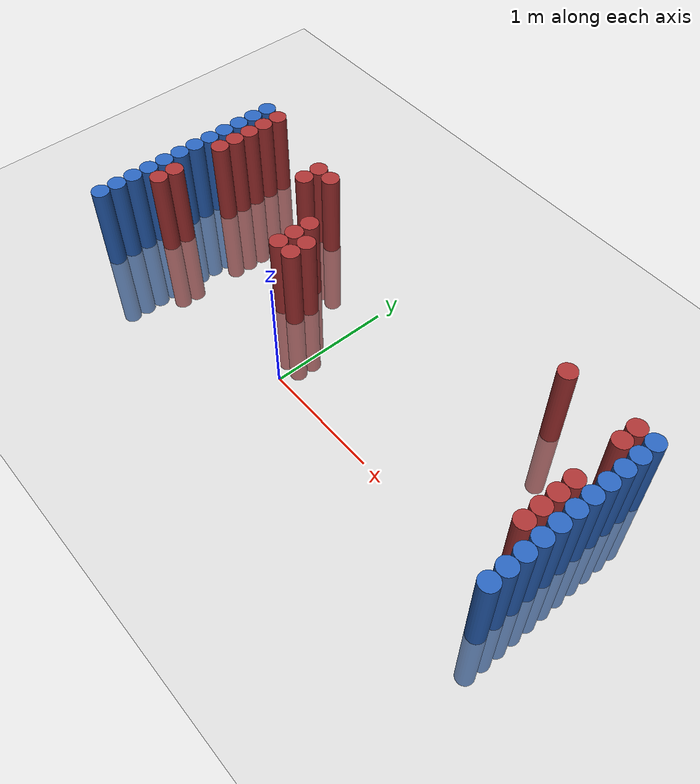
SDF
<sdf version="1.6">
 <world name="default">
  <model name="ground_plane">
   <static>1</static>
   <link name="link">
    <collision name="collision">
     <geometry><plane><normal>0 0 1</normal><size>100 100</size></plane></geometry>
     <surface><friction><ode><mu>100</mu><mu2>50</mu2></ode></friction></surface>
    </collision>
    <visual name="visual">
     <cast_shadows>0</cast_shadows>
     <geometry><plane><normal>0 0 1</normal><size>100 100</size></plane></geometry>
     <material>
      <script><uri>file://media/materials/scripts/gazebo.material</uri><name>Gazebo/Grey</name></script>
     </material>
    </visual>
   </link>
  </model>
  <model name="unit_cylinder_90">
   <static>1</static>
   <pose>2.425000 -0.275000 0.000000 0.000000 0.000000 0.000000</pose>
   <link name="link">
    <inertial>
     <mass>1</mass>
     <inertia><ixx>0.145833</ixx><ixy>0</ixy><ixz>0</ixz><iyy>0.145833</iyy><iyz>0</iyz><izz>0.125</izz></inertia>
    </inertial>
    <collision name="collision">
     <geometry><cylinder><radius>0.075000</radius><length>1.5</length></cylinder></geometry>
    </collision>
    <visual name="visual">
     <geometry><cylinder><radius>0.075000</radius><length>1.5</length></cylinder></geometry>
     <material>
      <ambient>0.152000 0.379000 0.720000 1</ambient>
      <diffuse>0.152000 0.379000 0.720000 1</diffuse>
     </material>
     <material>
      <script><name>Gazebo/Grey</name><uri>file://media/materials/scripts/gazebo.material</uri></script>
     </material>
    </visual>
   </link>
  </model>
  <model name="unit_cylinder_91">
   <static>1</static>
   <pose>-1.925000 -0.275000 0.000000 0.000000 0.000000 0.000000</pose>
   <link name="link">
    <inertial>
     <mass>1</mass>
     <inertia><ixx>0.145833</ixx><ixy>0</ixy><ixz>0</ixz><iyy>0.145833</iyy><iyz>0</iyz><izz>0.125</izz></inertia>
    </inertial>
    <collision name="collision">
     <geometry><cylinder><radius>0.075000</radius><length>1.5</length></cylinder></geometry>
    </collision>
    <visual name="visual">
     <geometry><cylinder><radius>0.075000</radius><length>1.5</length></cylinder></geometry>
     <material>
      <ambient>0.152000 0.379000 0.720000 1</ambient>
      <diffuse>0.152000 0.379000 0.720000 1</diffuse>
     </material>
     <material>
      <script><name>Gazebo/Grey</name><uri>file://media/materials/scripts/gazebo.material</uri></script>
     </material>
    </visual>
   </link>
  </model>
  <model name="unit_cylinder_92">
   <static>1</static>
   <pose>2.425000 -0.125000 0.000000 0.000000 0.000000 0.000000</pose>
   <link name="link">
    <inertial>
     <mass>1</mass>
     <inertia><ixx>0.145833</ixx><ixy>0</ixy><ixz>0</ixz><iyy>0.145833</iyy><iyz>0</iyz><izz>0.125</izz></inertia>
    </inertial>
    <collision name="collision">
     <geometry><cylinder><radius>0.075000</radius><length>1.5</length></cylinder></geometry>
    </collision>
    <visual name="visual">
     <geometry><cylinder><radius>0.075000</radius><length>1.5</length></cylinder></geometry>
     <material>
      <ambient>0.152000 0.379000 0.720000 1</ambient>
      <diffuse>0.152000 0.379000 0.720000 1</diffuse>
     </material>
     <material>
      <script><name>Gazebo/Grey</name><uri>file://media/materials/scripts/gazebo.material</uri></script>
     </material>
    </visual>
   </link>
  </model>
  <model name="unit_cylinder_93">
   <static>1</static>
   <pose>-1.925000 -0.125000 0.000000 0.000000 0.000000 0.000000</pose>
   <link name="link">
    <inertial>
     <mass>1</mass>
     <inertia><ixx>0.145833</ixx><ixy>0</ixy><ixz>0</ixz><iyy>0.145833</iyy><iyz>0</iyz><izz>0.125</izz></inertia>
    </inertial>
    <collision name="collision">
     <geometry><cylinder><radius>0.075000</radius><length>1.5</length></cylinder></geometry>
    </collision>
    <visual name="visual">
     <geometry><cylinder><radius>0.075000</radius><length>1.5</length></cylinder></geometry>
     <material>
      <ambient>0.152000 0.379000 0.720000 1</ambient>
      <diffuse>0.152000 0.379000 0.720000 1</diffuse>
     </material>
     <material>
      <script><name>Gazebo/Grey</name><uri>file://media/materials/scripts/gazebo.material</uri></script>
     </material>
    </visual>
   </link>
  </model>
  <model name="unit_cylinder_94">
   <static>1</static>
   <pose>2.425000 0.025000 0.000000 0.000000 0.000000 0.000000</pose>
   <link name="link">
    <inertial>
     <mass>1</mass>
     <inertia><ixx>0.145833</ixx><ixy>0</ixy><ixz>0</ixz><iyy>0.145833</iyy><iyz>0</iyz><izz>0.125</izz></inertia>
    </inertial>
    <collision name="collision">
     <geometry><cylinder><radius>0.075000</radius><length>1.5</length></cylinder></geometry>
    </collision>
    <visual name="visual">
     <geometry><cylinder><radius>0.075000</radius><length>1.5</length></cylinder></geometry>
     <material>
      <ambient>0.152000 0.379000 0.720000 1</ambient>
      <diffuse>0.152000 0.379000 0.720000 1</diffuse>
     </material>
     <material>
      <script><name>Gazebo/Grey</name><uri>file://media/materials/scripts/gazebo.material</uri></script>
     </material>
    </visual>
   </link>
  </model>
  <model name="unit_cylinder_95">
   <static>1</static>
   <pose>-1.925000 0.025000 0.000000 0.000000 0.000000 0.000000</pose>
   <link name="link">
    <inertial>
     <mass>1</mass>
     <inertia><ixx>0.145833</ixx><ixy>0</ixy><ixz>0</ixz><iyy>0.145833</iyy><iyz>0</iyz><izz>0.125</izz></inertia>
    </inertial>
    <collision name="collision">
     <geometry><cylinder><radius>0.075000</radius><length>1.5</length></cylinder></geometry>
    </collision>
    <visual name="visual">
     <geometry><cylinder><radius>0.075000</radius><length>1.5</length></cylinder></geometry>
     <material>
      <ambient>0.152000 0.379000 0.720000 1</ambient>
      <diffuse>0.152000 0.379000 0.720000 1</diffuse>
     </material>
     <material>
      <script><name>Gazebo/Grey</name><uri>file://media/materials/scripts/gazebo.material</uri></script>
     </material>
    </visual>
   </link>
  </model>
  <model name="unit_cylinder_96">
   <static>1</static>
   <pose>-1.925000 0.175000 0.000000 0.000000 0.000000 0.000000</pose>
   <link name="link">
    <inertial>
     <mass>1</mass>
     <inertia><ixx>0.145833</ixx><ixy>0</ixy><ixz>0</ixz><iyy>0.145833</iyy><iyz>0</iyz><izz>0.125</izz></inertia>
    </inertial>
    <collision name="collision">
     <geometry><cylinder><radius>0.075000</radius><length>1.5</length></cylinder></geometry>
    </collision>
    <visual name="visual">
     <geometry><cylinder><radius>0.075000</radius><length>1.5</length></cylinder></geometry>
     <material>
      <ambient>0.152000 0.379000 0.720000 1</ambient>
      <diffuse>0.152000 0.379000 0.720000 1</diffuse>
     </material>
     <material>
      <script><name>Gazebo/Grey</name><uri>file://media/materials/scripts/gazebo.material</uri></script>
     </material>
    </visual>
   </link>
  </model>
  <model name="unit_cylinder_97">
   <static>1</static>
   <pose>-1.925000 0.325000 0.000000 0.000000 0.000000 0.000000</pose>
   <link name="link">
    <inertial>
     <mass>1</mass>
     <inertia><ixx>0.145833</ixx><ixy>0</ixy><ixz>0</ixz><iyy>0.145833</iyy><iyz>0</iyz><izz>0.125</izz></inertia>
    </inertial>
    <collision name="collision">
     <geometry><cylinder><radius>0.075000</radius><length>1.5</length></cylinder></geometry>
    </collision>
    <visual name="visual">
     <geometry><cylinder><radius>0.075000</radius><length>1.5</length></cylinder></geometry>
     <material>
      <ambient>0.152000 0.379000 0.720000 1</ambient>
      <diffuse>0.152000 0.379000 0.720000 1</diffuse>
     </material>
     <material>
      <script><name>Gazebo/Grey</name><uri>file://media/materials/scripts/gazebo.material</uri></script>
     </material>
    </visual>
   </link>
  </model>
  <model name="unit_cylinder_98">
   <static>1</static>
   <pose>-1.925000 0.475000 0.000000 0.000000 0.000000 0.000000</pose>
   <link name="link">
    <inertial>
     <mass>1</mass>
     <inertia><ixx>0.145833</ixx><ixy>0</ixy><ixz>0</ixz><iyy>0.145833</iyy><iyz>0</iyz><izz>0.125</izz></inertia>
    </inertial>
    <collision name="collision">
     <geometry><cylinder><radius>0.075000</radius><length>1.5</length></cylinder></geometry>
    </collision>
    <visual name="visual">
     <geometry><cylinder><radius>0.075000</radius><length>1.5</length></cylinder></geometry>
     <material>
      <ambient>0.152000 0.379000 0.720000 1</ambient>
      <diffuse>0.152000 0.379000 0.720000 1</diffuse>
     </material>
     <material>
      <script><name>Gazebo/Grey</name><uri>file://media/materials/scripts/gazebo.material</uri></script>
     </material>
    </visual>
   </link>
  </model>
  <model name="unit_cylinder_99">
   <static>1</static>
   <pose>-1.925000 0.625000 0.000000 0.000000 0.000000 0.000000</pose>
   <link name="link">
    <inertial>
     <mass>1</mass>
     <inertia><ixx>0.145833</ixx><ixy>0</ixy><ixz>0</ixz><iyy>0.145833</iyy><iyz>0</iyz><izz>0.125</izz></inertia>
    </inertial>
    <collision name="collision">
     <geometry><cylinder><radius>0.075000</radius><length>1.5</length></cylinder></geometry>
    </collision>
    <visual name="visual">
     <geometry><cylinder><radius>0.075000</radius><length>1.5</length></cylinder></geometry>
     <material>
      <ambient>0.152000 0.379000 0.720000 1</ambient>
      <diffuse>0.152000 0.379000 0.720000 1</diffuse>
     </material>
     <material>
      <script><name>Gazebo/Grey</name><uri>file://media/materials/scripts/gazebo.material</uri></script>
     </material>
    </visual>
   </link>
  </model>
  <model name="unit_cylinder_100">
   <static>1</static>
   <pose>-1.925000 0.775000 0.000000 0.000000 0.000000 0.000000</pose>
   <link name="link">
    <inertial>
     <mass>1</mass>
     <inertia><ixx>0.145833</ixx><ixy>0</ixy><ixz>0</ixz><iyy>0.145833</iyy><iyz>0</iyz><izz>0.125</izz></inertia>
    </inertial>
    <collision name="collision">
     <geometry><cylinder><radius>0.075000</radius><length>1.5</length></cylinder></geometry>
    </collision>
    <visual name="visual">
     <geometry><cylinder><radius>0.075000</radius><length>1.5</length></cylinder></geometry>
     <material>
      <ambient>0.152000 0.379000 0.720000 1</ambient>
      <diffuse>0.152000 0.379000 0.720000 1</diffuse>
     </material>
     <material>
      <script><name>Gazebo/Grey</name><uri>file://media/materials/scripts/gazebo.material</uri></script>
     </material>
    </visual>
   </link>
  </model>
  <model name="unit_cylinder_101">
   <static>1</static>
   <pose>-1.925000 0.925000 0.000000 0.000000 0.000000 0.000000</pose>
   <link name="link">
    <inertial>
     <mass>1</mass>
     <inertia><ixx>0.145833</ixx><ixy>0</ixy><ixz>0</ixz><iyy>0.145833</iyy><iyz>0</iyz><izz>0.125</izz></inertia>
    </inertial>
    <collision name="collision">
     <geometry><cylinder><radius>0.075000</radius><length>1.5</length></cylinder></geometry>
    </collision>
    <visual name="visual">
     <geometry><cylinder><radius>0.075000</radius><length>1.5</length></cylinder></geometry>
     <material>
      <ambient>0.152000 0.379000 0.720000 1</ambient>
      <diffuse>0.152000 0.379000 0.720000 1</diffuse>
     </material>
     <material>
      <script><name>Gazebo/Grey</name><uri>file://media/materials/scripts/gazebo.material</uri></script>
     </material>
    </visual>
   </link>
  </model>
  <model name="unit_cylinder_102">
   <static>1</static>
   <pose>-1.925000 1.075000 0.000000 0.000000 0.000000 0.000000</pose>
   <link name="link">
    <inertial>
     <mass>1</mass>
     <inertia><ixx>0.145833</ixx><ixy>0</ixy><ixz>0</ixz><iyy>0.145833</iyy><iyz>0</iyz><izz>0.125</izz></inertia>
    </inertial>
    <collision name="collision">
     <geometry><cylinder><radius>0.075000</radius><length>1.5</length></cylinder></geometry>
    </collision>
    <visual name="visual">
     <geometry><cylinder><radius>0.075000</radius><length>1.5</length></cylinder></geometry>
     <material>
      <ambient>0.152000 0.379000 0.720000 1</ambient>
      <diffuse>0.152000 0.379000 0.720000 1</diffuse>
     </material>
     <material>
      <script><name>Gazebo/Grey</name><uri>file://media/materials/scripts/gazebo.material</uri></script>
     </material>
    </visual>
   </link>
  </model>
  <model name="unit_cylinder_103">
   <static>1</static>
   <pose>-1.925000 1.225000 0.000000 0.000000 0.000000 0.000000</pose>
   <link name="link">
    <inertial>
     <mass>1</mass>
     <inertia><ixx>0.145833</ixx><ixy>0</ixy><ixz>0</ixz><iyy>0.145833</iyy><iyz>0</iyz><izz>0.125</izz></inertia>
    </inertial>
    <collision name="collision">
     <geometry><cylinder><radius>0.075000</radius><length>1.5</length></cylinder></geometry>
    </collision>
    <visual name="visual">
     <geometry><cylinder><radius>0.075000</radius><length>1.5</length></cylinder></geometry>
     <material>
      <ambient>0.152000 0.379000 0.720000 1</ambient>
      <diffuse>0.152000 0.379000 0.720000 1</diffuse>
     </material>
     <material>
      <script><name>Gazebo/Grey</name><uri>file://media/materials/scripts/gazebo.material</uri></script>
     </material>
    </visual>
   </link>
  </model>
  <model name="unit_cylinder_104">
   <static>1</static>
   <pose>-1.925000 1.375000 0.000000 0.000000 0.000000 0.000000</pose>
   <link name="link">
    <inertial>
     <mass>1</mass>
     <inertia><ixx>0.145833</ixx><ixy>0</ixy><ixz>0</ixz><iyy>0.145833</iyy><iyz>0</iyz><izz>0.125</izz></inertia>
    </inertial>
    <collision name="collision">
     <geometry><cylinder><radius>0.075000</radius><length>1.5</length></cylinder></geometry>
    </collision>
    <visual name="visual">
     <geometry><cylinder><radius>0.075000</radius><length>1.5</length></cylinder></geometry>
     <material>
      <ambient>0.152000 0.379000 0.720000 1</ambient>
      <diffuse>0.152000 0.379000 0.720000 1</diffuse>
     </material>
     <material>
      <script><name>Gazebo/Grey</name><uri>file://media/materials/scripts/gazebo.material</uri></script>
     </material>
    </visual>
   </link>
  </model>
  <model name="unit_cylinder_126">
   <static>1</static>
   <pose>-1.775000 0.175000 0.000000 0.000000 0.000000 0.000000</pose>
   <link name="link">
    <inertial>
     <mass>1</mass>
     <inertia><ixx>0.145833</ixx><ixy>0</ixy><ixz>0</ixz><iyy>0.145833</iyy><iyz>0</iyz><izz>0.125</izz></inertia>
    </inertial>
    <collision name="collision">
     <geometry><cylinder><radius>0.075000</radius><length>1.5</length></cylinder></geometry>
    </collision>
    <visual name="visual">
     <geometry><cylinder><radius>0.075000</radius><length>1.5</length></cylinder></geometry>
     <material>
      <ambient>0.648000 0.192000 0.192000 1</ambient>
      <diffuse>0.648000 0.192000 0.192000 1</diffuse>
     </material>
     <material>
      <script><name>Gazebo/Grey</name><uri>file://media/materials/scripts/gazebo.material</uri></script>
     </material>
    </visual>
   </link>
  </model>
  <model name="unit_cylinder_127">
   <static>1</static>
   <pose>-1.775000 0.325000 0.000000 0.000000 0.000000 0.000000</pose>
   <link name="link">
    <inertial>
     <mass>1</mass>
     <inertia><ixx>0.145833</ixx><ixy>0</ixy><ixz>0</ixz><iyy>0.145833</iyy><iyz>0</iyz><izz>0.125</izz></inertia>
    </inertial>
    <collision name="collision">
     <geometry><cylinder><radius>0.075000</radius><length>1.5</length></cylinder></geometry>
    </collision>
    <visual name="visual">
     <geometry><cylinder><radius>0.075000</radius><length>1.5</length></cylinder></geometry>
     <material>
      <ambient>0.648000 0.192000 0.192000 1</ambient>
      <diffuse>0.648000 0.192000 0.192000 1</diffuse>
     </material>
     <material>
      <script><name>Gazebo/Grey</name><uri>file://media/materials/scripts/gazebo.material</uri></script>
     </material>
    </visual>
   </link>
  </model>
  <model name="unit_cylinder_128">
   <static>1</static>
   <pose>-1.775000 0.775000 0.000000 0.000000 0.000000 0.000000</pose>
   <link name="link">
    <inertial>
     <mass>1</mass>
     <inertia><ixx>0.145833</ixx><ixy>0</ixy><ixz>0</ixz><iyy>0.145833</iyy><iyz>0</iyz><izz>0.125</izz></inertia>
    </inertial>
    <collision name="collision">
     <geometry><cylinder><radius>0.075000</radius><length>1.5</length></cylinder></geometry>
    </collision>
    <visual name="visual">
     <geometry><cylinder><radius>0.075000</radius><length>1.5</length></cylinder></geometry>
     <material>
      <ambient>0.648000 0.192000 0.192000 1</ambient>
      <diffuse>0.648000 0.192000 0.192000 1</diffuse>
     </material>
     <material>
      <script><name>Gazebo/Grey</name><uri>file://media/materials/scripts/gazebo.material</uri></script>
     </material>
    </visual>
   </link>
  </model>
  <model name="unit_cylinder_129">
   <static>1</static>
   <pose>-1.775000 0.925000 0.000000 0.000000 0.000000 0.000000</pose>
   <link name="link">
    <inertial>
     <mass>1</mass>
     <inertia><ixx>0.145833</ixx><ixy>0</ixy><ixz>0</ixz><iyy>0.145833</iyy><iyz>0</iyz><izz>0.125</izz></inertia>
    </inertial>
    <collision name="collision">
     <geometry><cylinder><radius>0.075000</radius><length>1.5</length></cylinder></geometry>
    </collision>
    <visual name="visual">
     <geometry><cylinder><radius>0.075000</radius><length>1.5</length></cylinder></geometry>
     <material>
      <ambient>0.648000 0.192000 0.192000 1</ambient>
      <diffuse>0.648000 0.192000 0.192000 1</diffuse>
     </material>
     <material>
      <script><name>Gazebo/Grey</name><uri>file://media/materials/scripts/gazebo.material</uri></script>
     </material>
    </visual>
   </link>
  </model>
  <model name="unit_cylinder_130">
   <static>1</static>
   <pose>-1.775000 1.075000 0.000000 0.000000 0.000000 0.000000</pose>
   <link name="link">
    <inertial>
     <mass>1</mass>
     <inertia><ixx>0.145833</ixx><ixy>0</ixy><ixz>0</ixz><iyy>0.145833</iyy><iyz>0</iyz><izz>0.125</izz></inertia>
    </inertial>
    <collision name="collision">
     <geometry><cylinder><radius>0.075000</radius><length>1.5</length></cylinder></geometry>
    </collision>
    <visual name="visual">
     <geometry><cylinder><radius>0.075000</radius><length>1.5</length></cylinder></geometry>
     <material>
      <ambient>0.648000 0.192000 0.192000 1</ambient>
      <diffuse>0.648000 0.192000 0.192000 1</diffuse>
     </material>
     <material>
      <script><name>Gazebo/Grey</name><uri>file://media/materials/scripts/gazebo.material</uri></script>
     </material>
    </visual>
   </link>
  </model>
  <model name="unit_cylinder_131">
   <static>1</static>
   <pose>-1.775000 1.225000 0.000000 0.000000 0.000000 0.000000</pose>
   <link name="link">
    <inertial>
     <mass>1</mass>
     <inertia><ixx>0.145833</ixx><ixy>0</ixy><ixz>0</ixz><iyy>0.145833</iyy><iyz>0</iyz><izz>0.125</izz></inertia>
    </inertial>
    <collision name="collision">
     <geometry><cylinder><radius>0.075000</radius><length>1.5</length></cylinder></geometry>
    </collision>
    <visual name="visual">
     <geometry><cylinder><radius>0.075000</radius><length>1.5</length></cylinder></geometry>
     <material>
      <ambient>0.648000 0.192000 0.192000 1</ambient>
      <diffuse>0.648000 0.192000 0.192000 1</diffuse>
     </material>
     <material>
      <script><name>Gazebo/Grey</name><uri>file://media/materials/scripts/gazebo.material</uri></script>
     </material>
    </visual>
   </link>
  </model>
  <model name="unit_cylinder_132">
   <static>1</static>
   <pose>-1.775000 1.375000 0.000000 0.000000 0.000000 0.000000</pose>
   <link name="link">
    <inertial>
     <mass>1</mass>
     <inertia><ixx>0.145833</ixx><ixy>0</ixy><ixz>0</ixz><iyy>0.145833</iyy><iyz>0</iyz><izz>0.125</izz></inertia>
    </inertial>
    <collision name="collision">
     <geometry><cylinder><radius>0.075000</radius><length>1.5</length></cylinder></geometry>
    </collision>
    <visual name="visual">
     <geometry><cylinder><radius>0.075000</radius><length>1.5</length></cylinder></geometry>
     <material>
      <ambient>0.648000 0.192000 0.192000 1</ambient>
      <diffuse>0.648000 0.192000 0.192000 1</diffuse>
     </material>
     <material>
      <script><name>Gazebo/Grey</name><uri>file://media/materials/scripts/gazebo.material</uri></script>
     </material>
    </visual>
   </link>
  </model>
  <model name="unit_cylinder_137">
   <static>1</static>
   <pose>-1.025000 1.075000 0.000000 0.000000 0.000000 0.000000</pose>
   <link name="link">
    <inertial>
     <mass>1</mass>
     <inertia><ixx>0.145833</ixx><ixy>0</ixy><ixz>0</ixz><iyy>0.145833</iyy><iyz>0</iyz><izz>0.125</izz></inertia>
    </inertial>
    <collision name="collision">
     <geometry><cylinder><radius>0.075000</radius><length>1.5</length></cylinder></geometry>
    </collision>
    <visual name="visual">
     <geometry><cylinder><radius>0.075000</radius><length>1.5</length></cylinder></geometry>
     <material>
      <ambient>0.648000 0.192000 0.192000 1</ambient>
      <diffuse>0.648000 0.192000 0.192000 1</diffuse>
     </material>
     <material>
      <script><name>Gazebo/Grey</name><uri>file://media/materials/scripts/gazebo.material</uri></script>
     </material>
    </visual>
   </link>
  </model>
  <model name="unit_cylinder_138">
   <static>1</static>
   <pose>-1.025000 1.225000 0.000000 0.000000 0.000000 0.000000</pose>
   <link name="link">
    <inertial>
     <mass>1</mass>
     <inertia><ixx>0.145833</ixx><ixy>0</ixy><ixz>0</ixz><iyy>0.145833</iyy><iyz>0</iyz><izz>0.125</izz></inertia>
    </inertial>
    <collision name="collision">
     <geometry><cylinder><radius>0.075000</radius><length>1.5</length></cylinder></geometry>
    </collision>
    <visual name="visual">
     <geometry><cylinder><radius>0.075000</radius><length>1.5</length></cylinder></geometry>
     <material>
      <ambient>0.648000 0.192000 0.192000 1</ambient>
      <diffuse>0.648000 0.192000 0.192000 1</diffuse>
     </material>
     <material>
      <script><name>Gazebo/Grey</name><uri>file://media/materials/scripts/gazebo.material</uri></script>
     </material>
    </visual>
   </link>
  </model>
  <model name="unit_cylinder_139">
   <static>1</static>
   <pose>-0.875000 1.225000 0.000000 0.000000 0.000000 0.000000</pose>
   <link name="link">
    <inertial>
     <mass>1</mass>
     <inertia><ixx>0.145833</ixx><ixy>0</ixy><ixz>0</ixz><iyy>0.145833</iyy><iyz>0</iyz><izz>0.125</izz></inertia>
    </inertial>
    <collision name="collision">
     <geometry><cylinder><radius>0.075000</radius><length>1.5</length></cylinder></geometry>
    </collision>
    <visual name="visual">
     <geometry><cylinder><radius>0.075000</radius><length>1.5</length></cylinder></geometry>
     <material>
      <ambient>0.648000 0.192000 0.192000 1</ambient>
      <diffuse>0.648000 0.192000 0.192000 1</diffuse>
     </material>
     <material>
      <script><name>Gazebo/Grey</name><uri>file://media/materials/scripts/gazebo.material</uri></script>
     </material>
    </visual>
   </link>
  </model>
  <model name="unit_cylinder_143">
   <static>1</static>
   <pose>-0.575000 0.475000 0.000000 0.000000 0.000000 0.000000</pose>
   <link name="link">
    <inertial>
     <mass>1</mass>
     <inertia><ixx>0.145833</ixx><ixy>0</ixy><ixz>0</ixz><iyy>0.145833</iyy><iyz>0</iyz><izz>0.125</izz></inertia>
    </inertial>
    <collision name="collision">
     <geometry><cylinder><radius>0.075000</radius><length>1.5</length></cylinder></geometry>
    </collision>
    <visual name="visual">
     <geometry><cylinder><radius>0.075000</radius><length>1.5</length></cylinder></geometry>
     <material>
      <ambient>0.648000 0.192000 0.192000 1</ambient>
      <diffuse>0.648000 0.192000 0.192000 1</diffuse>
     </material>
     <material>
      <script><name>Gazebo/Grey</name><uri>file://media/materials/scripts/gazebo.material</uri></script>
     </material>
    </visual>
   </link>
  </model>
  <model name="unit_cylinder_144">
   <static>1</static>
   <pose>-0.575000 0.625000 0.000000 0.000000 0.000000 0.000000</pose>
   <link name="link">
    <inertial>
     <mass>1</mass>
     <inertia><ixx>0.145833</ixx><ixy>0</ixy><ixz>0</ixz><iyy>0.145833</iyy><iyz>0</iyz><izz>0.125</izz></inertia>
    </inertial>
    <collision name="collision">
     <geometry><cylinder><radius>0.075000</radius><length>1.5</length></cylinder></geometry>
    </collision>
    <visual name="visual">
     <geometry><cylinder><radius>0.075000</radius><length>1.5</length></cylinder></geometry>
     <material>
      <ambient>0.648000 0.192000 0.192000 1</ambient>
      <diffuse>0.648000 0.192000 0.192000 1</diffuse>
     </material>
     <material>
      <script><name>Gazebo/Grey</name><uri>file://media/materials/scripts/gazebo.material</uri></script>
     </material>
    </visual>
   </link>
  </model>
  <model name="unit_cylinder_145">
   <static>1</static>
   <pose>-0.575000 0.775000 0.000000 0.000000 0.000000 0.000000</pose>
   <link name="link">
    <inertial>
     <mass>1</mass>
     <inertia><ixx>0.145833</ixx><ixy>0</ixy><ixz>0</ixz><iyy>0.145833</iyy><iyz>0</iyz><izz>0.125</izz></inertia>
    </inertial>
    <collision name="collision">
     <geometry><cylinder><radius>0.075000</radius><length>1.5</length></cylinder></geometry>
    </collision>
    <visual name="visual">
     <geometry><cylinder><radius>0.075000</radius><length>1.5</length></cylinder></geometry>
     <material>
      <ambient>0.648000 0.192000 0.192000 1</ambient>
      <diffuse>0.648000 0.192000 0.192000 1</diffuse>
     </material>
     <material>
      <script><name>Gazebo/Grey</name><uri>file://media/materials/scripts/gazebo.material</uri></script>
     </material>
    </visual>
   </link>
  </model>
  <model name="unit_cylinder_148">
   <static>1</static>
   <pose>-0.425000 0.475000 0.000000 0.000000 0.000000 0.000000</pose>
   <link name="link">
    <inertial>
     <mass>1</mass>
     <inertia><ixx>0.145833</ixx><ixy>0</ixy><ixz>0</ixz><iyy>0.145833</iyy><iyz>0</iyz><izz>0.125</izz></inertia>
    </inertial>
    <collision name="collision">
     <geometry><cylinder><radius>0.075000</radius><length>1.5</length></cylinder></geometry>
    </collision>
    <visual name="visual">
     <geometry><cylinder><radius>0.075000</radius><length>1.5</length></cylinder></geometry>
     <material>
      <ambient>0.648000 0.192000 0.192000 1</ambient>
      <diffuse>0.648000 0.192000 0.192000 1</diffuse>
     </material>
     <material>
      <script><name>Gazebo/Grey</name><uri>file://media/materials/scripts/gazebo.material</uri></script>
     </material>
    </visual>
   </link>
  </model>
  <model name="unit_cylinder_149">
   <static>1</static>
   <pose>-0.425000 0.625000 0.000000 0.000000 0.000000 0.000000</pose>
   <link name="link">
    <inertial>
     <mass>1</mass>
     <inertia><ixx>0.145833</ixx><ixy>0</ixy><ixz>0</ixz><iyy>0.145833</iyy><iyz>0</iyz><izz>0.125</izz></inertia>
    </inertial>
    <collision name="collision">
     <geometry><cylinder><radius>0.075000</radius><length>1.5</length></cylinder></geometry>
    </collision>
    <visual name="visual">
     <geometry><cylinder><radius>0.075000</radius><length>1.5</length></cylinder></geometry>
     <material>
      <ambient>0.648000 0.192000 0.192000 1</ambient>
      <diffuse>0.648000 0.192000 0.192000 1</diffuse>
     </material>
     <material>
      <script><name>Gazebo/Grey</name><uri>file://media/materials/scripts/gazebo.material</uri></script>
     </material>
    </visual>
   </link>
  </model>
  <model name="unit_cylinder_181">
   <static>1</static>
   <pose>1.675000 1.225000 0.000000 0.000000 0.000000 0.000000</pose>
   <link name="link">
    <inertial>
     <mass>1</mass>
     <inertia><ixx>0.145833</ixx><ixy>0</ixy><ixz>0</ixz><iyy>0.145833</iyy><iyz>0</iyz><izz>0.125</izz></inertia>
    </inertial>
    <collision name="collision">
     <geometry><cylinder><radius>0.075000</radius><length>1.5</length></cylinder></geometry>
    </collision>
    <visual name="visual">
     <geometry><cylinder><radius>0.075000</radius><length>1.5</length></cylinder></geometry>
     <material>
      <ambient>0.648000 0.192000 0.192000 1</ambient>
      <diffuse>0.648000 0.192000 0.192000 1</diffuse>
     </material>
     <material>
      <script><name>Gazebo/Grey</name><uri>file://media/materials/scripts/gazebo.material</uri></script>
     </material>
    </visual>
   </link>
  </model>
  <model name="unit_cylinder_186">
   <static>1</static>
   <pose>2.275000 0.175000 0.000000 0.000000 0.000000 0.000000</pose>
   <link name="link">
    <inertial>
     <mass>1</mass>
     <inertia><ixx>0.145833</ixx><ixy>0</ixy><ixz>0</ixz><iyy>0.145833</iyy><iyz>0</iyz><izz>0.125</izz></inertia>
    </inertial>
    <collision name="collision">
     <geometry><cylinder><radius>0.075000</radius><length>1.5</length></cylinder></geometry>
    </collision>
    <visual name="visual">
     <geometry><cylinder><radius>0.075000</radius><length>1.5</length></cylinder></geometry>
     <material>
      <ambient>0.648000 0.192000 0.192000 1</ambient>
      <diffuse>0.648000 0.192000 0.192000 1</diffuse>
     </material>
     <material>
      <script><name>Gazebo/Grey</name><uri>file://media/materials/scripts/gazebo.material</uri></script>
     </material>
    </visual>
   </link>
  </model>
  <model name="unit_cylinder_187">
   <static>1</static>
   <pose>2.275000 0.325000 0.000000 0.000000 0.000000 0.000000</pose>
   <link name="link">
    <inertial>
     <mass>1</mass>
     <inertia><ixx>0.145833</ixx><ixy>0</ixy><ixz>0</ixz><iyy>0.145833</iyy><iyz>0</iyz><izz>0.125</izz></inertia>
    </inertial>
    <collision name="collision">
     <geometry><cylinder><radius>0.075000</radius><length>1.5</length></cylinder></geometry>
    </collision>
    <visual name="visual">
     <geometry><cylinder><radius>0.075000</radius><length>1.5</length></cylinder></geometry>
     <material>
      <ambient>0.648000 0.192000 0.192000 1</ambient>
      <diffuse>0.648000 0.192000 0.192000 1</diffuse>
     </material>
     <material>
      <script><name>Gazebo/Grey</name><uri>file://media/materials/scripts/gazebo.material</uri></script>
     </material>
    </visual>
   </link>
  </model>
  <model name="unit_cylinder_188">
   <static>1</static>
   <pose>2.275000 0.475000 0.000000 0.000000 0.000000 0.000000</pose>
   <link name="link">
    <inertial>
     <mass>1</mass>
     <inertia><ixx>0.145833</ixx><ixy>0</ixy><ixz>0</ixz><iyy>0.145833</iyy><iyz>0</iyz><izz>0.125</izz></inertia>
    </inertial>
    <collision name="collision">
     <geometry><cylinder><radius>0.075000</radius><length>1.5</length></cylinder></geometry>
    </collision>
    <visual name="visual">
     <geometry><cylinder><radius>0.075000</radius><length>1.5</length></cylinder></geometry>
     <material>
      <ambient>0.648000 0.192000 0.192000 1</ambient>
      <diffuse>0.648000 0.192000 0.192000 1</diffuse>
     </material>
     <material>
      <script><name>Gazebo/Grey</name><uri>file://media/materials/scripts/gazebo.material</uri></script>
     </material>
    </visual>
   </link>
  </model>
  <model name="unit_cylinder_189">
   <static>1</static>
   <pose>2.275000 0.625000 0.000000 0.000000 0.000000 0.000000</pose>
   <link name="link">
    <inertial>
     <mass>1</mass>
     <inertia><ixx>0.145833</ixx><ixy>0</ixy><ixz>0</ixz><iyy>0.145833</iyy><iyz>0</iyz><izz>0.125</izz></inertia>
    </inertial>
    <collision name="collision">
     <geometry><cylinder><radius>0.075000</radius><length>1.5</length></cylinder></geometry>
    </collision>
    <visual name="visual">
     <geometry><cylinder><radius>0.075000</radius><length>1.5</length></cylinder></geometry>
     <material>
      <ambient>0.648000 0.192000 0.192000 1</ambient>
      <diffuse>0.648000 0.192000 0.192000 1</diffuse>
     </material>
     <material>
      <script><name>Gazebo/Grey</name><uri>file://media/materials/scripts/gazebo.material</uri></script>
     </material>
    </visual>
   </link>
  </model>
  <model name="unit_cylinder_190">
   <static>1</static>
   <pose>2.275000 1.075000 0.000000 0.000000 0.000000 0.000000</pose>
   <link name="link">
    <inertial>
     <mass>1</mass>
     <inertia><ixx>0.145833</ixx><ixy>0</ixy><ixz>0</ixz><iyy>0.145833</iyy><iyz>0</iyz><izz>0.125</izz></inertia>
    </inertial>
    <collision name="collision">
     <geometry><cylinder><radius>0.075000</radius><length>1.5</length></cylinder></geometry>
    </collision>
    <visual name="visual">
     <geometry><cylinder><radius>0.075000</radius><length>1.5</length></cylinder></geometry>
     <material>
      <ambient>0.648000 0.192000 0.192000 1</ambient>
      <diffuse>0.648000 0.192000 0.192000 1</diffuse>
     </material>
     <material>
      <script><name>Gazebo/Grey</name><uri>file://media/materials/scripts/gazebo.material</uri></script>
     </material>
    </visual>
   </link>
  </model>
  <model name="unit_cylinder_191">
   <static>1</static>
   <pose>2.275000 1.225000 0.000000 0.000000 0.000000 0.000000</pose>
   <link name="link">
    <inertial>
     <mass>1</mass>
     <inertia><ixx>0.145833</ixx><ixy>0</ixy><ixz>0</ixz><iyy>0.145833</iyy><iyz>0</iyz><izz>0.125</izz></inertia>
    </inertial>
    <collision name="collision">
     <geometry><cylinder><radius>0.075000</radius><length>1.5</length></cylinder></geometry>
    </collision>
    <visual name="visual">
     <geometry><cylinder><radius>0.075000</radius><length>1.5</length></cylinder></geometry>
     <material>
      <ambient>0.648000 0.192000 0.192000 1</ambient>
      <diffuse>0.648000 0.192000 0.192000 1</diffuse>
     </material>
     <material>
      <script><name>Gazebo/Grey</name><uri>file://media/materials/scripts/gazebo.material</uri></script>
     </material>
    </visual>
   </link>
  </model>
  <model name="unit_cylinder_195">
   <static>1</static>
   <pose>2.425000 0.175000 0.000000 0.000000 0.000000 0.000000</pose>
   <link name="link">
    <inertial>
     <mass>1</mass>
     <inertia><ixx>0.145833</ixx><ixy>0</ixy><ixz>0</ixz><iyy>0.145833</iyy><iyz>0</iyz><izz>0.125</izz></inertia>
    </inertial>
    <collision name="collision">
     <geometry><cylinder><radius>0.075000</radius><length>1.5</length></cylinder></geometry>
    </collision>
    <visual name="visual">
     <geometry><cylinder><radius>0.075000</radius><length>1.5</length></cylinder></geometry>
     <material>
      <ambient>0.152000 0.379000 0.720000 1</ambient>
      <diffuse>0.152000 0.379000 0.720000 1</diffuse>
     </material>
     <material>
      <script><name>Gazebo/Grey</name><uri>file://media/materials/scripts/gazebo.material</uri></script>
     </material>
    </visual>
   </link>
  </model>
  <model name="unit_cylinder_196">
   <static>1</static>
   <pose>2.425000 0.325000 0.000000 0.000000 0.000000 0.000000</pose>
   <link name="link">
    <inertial>
     <mass>1</mass>
     <inertia><ixx>0.145833</ixx><ixy>0</ixy><ixz>0</ixz><iyy>0.145833</iyy><iyz>0</iyz><izz>0.125</izz></inertia>
    </inertial>
    <collision name="collision">
     <geometry><cylinder><radius>0.075000</radius><length>1.5</length></cylinder></geometry>
    </collision>
    <visual name="visual">
     <geometry><cylinder><radius>0.075000</radius><length>1.5</length></cylinder></geometry>
     <material>
      <ambient>0.152000 0.379000 0.720000 1</ambient>
      <diffuse>0.152000 0.379000 0.720000 1</diffuse>
     </material>
     <material>
      <script><name>Gazebo/Grey</name><uri>file://media/materials/scripts/gazebo.material</uri></script>
     </material>
    </visual>
   </link>
  </model>
  <model name="unit_cylinder_197">
   <static>1</static>
   <pose>2.425000 0.475000 0.000000 0.000000 0.000000 0.000000</pose>
   <link name="link">
    <inertial>
     <mass>1</mass>
     <inertia><ixx>0.145833</ixx><ixy>0</ixy><ixz>0</ixz><iyy>0.145833</iyy><iyz>0</iyz><izz>0.125</izz></inertia>
    </inertial>
    <collision name="collision">
     <geometry><cylinder><radius>0.075000</radius><length>1.5</length></cylinder></geometry>
    </collision>
    <visual name="visual">
     <geometry><cylinder><radius>0.075000</radius><length>1.5</length></cylinder></geometry>
     <material>
      <ambient>0.152000 0.379000 0.720000 1</ambient>
      <diffuse>0.152000 0.379000 0.720000 1</diffuse>
     </material>
     <material>
      <script><name>Gazebo/Grey</name><uri>file://media/materials/scripts/gazebo.material</uri></script>
     </material>
    </visual>
   </link>
  </model>
  <model name="unit_cylinder_198">
   <static>1</static>
   <pose>2.425000 0.625000 0.000000 0.000000 0.000000 0.000000</pose>
   <link name="link">
    <inertial>
     <mass>1</mass>
     <inertia><ixx>0.145833</ixx><ixy>0</ixy><ixz>0</ixz><iyy>0.145833</iyy><iyz>0</iyz><izz>0.125</izz></inertia>
    </inertial>
    <collision name="collision">
     <geometry><cylinder><radius>0.075000</radius><length>1.5</length></cylinder></geometry>
    </collision>
    <visual name="visual">
     <geometry><cylinder><radius>0.075000</radius><length>1.5</length></cylinder></geometry>
     <material>
      <ambient>0.152000 0.379000 0.720000 1</ambient>
      <diffuse>0.152000 0.379000 0.720000 1</diffuse>
     </material>
     <material>
      <script><name>Gazebo/Grey</name><uri>file://media/materials/scripts/gazebo.material</uri></script>
     </material>
    </visual>
   </link>
  </model>
  <model name="unit_cylinder_199">
   <static>1</static>
   <pose>2.425000 0.775000 0.000000 0.000000 0.000000 0.000000</pose>
   <link name="link">
    <inertial>
     <mass>1</mass>
     <inertia><ixx>0.145833</ixx><ixy>0</ixy><ixz>0</ixz><iyy>0.145833</iyy><iyz>0</iyz><izz>0.125</izz></inertia>
    </inertial>
    <collision name="collision">
     <geometry><cylinder><radius>0.075000</radius><length>1.5</length></cylinder></geometry>
    </collision>
    <visual name="visual">
     <geometry><cylinder><radius>0.075000</radius><length>1.5</length></cylinder></geometry>
     <material>
      <ambient>0.152000 0.379000 0.720000 1</ambient>
      <diffuse>0.152000 0.379000 0.720000 1</diffuse>
     </material>
     <material>
      <script><name>Gazebo/Grey</name><uri>file://media/materials/scripts/gazebo.material</uri></script>
     </material>
    </visual>
   </link>
  </model>
  <model name="unit_cylinder_200">
   <static>1</static>
   <pose>2.425000 0.925000 0.000000 0.000000 0.000000 0.000000</pose>
   <link name="link">
    <inertial>
     <mass>1</mass>
     <inertia><ixx>0.145833</ixx><ixy>0</ixy><ixz>0</ixz><iyy>0.145833</iyy><iyz>0</iyz><izz>0.125</izz></inertia>
    </inertial>
    <collision name="collision">
     <geometry><cylinder><radius>0.075000</radius><length>1.5</length></cylinder></geometry>
    </collision>
    <visual name="visual">
     <geometry><cylinder><radius>0.075000</radius><length>1.5</length></cylinder></geometry>
     <material>
      <ambient>0.152000 0.379000 0.720000 1</ambient>
      <diffuse>0.152000 0.379000 0.720000 1</diffuse>
     </material>
     <material>
      <script><name>Gazebo/Grey</name><uri>file://media/materials/scripts/gazebo.material</uri></script>
     </material>
    </visual>
   </link>
  </model>
  <model name="unit_cylinder_201">
   <static>1</static>
   <pose>2.425000 1.075000 0.000000 0.000000 0.000000 0.000000</pose>
   <link name="link">
    <inertial>
     <mass>1</mass>
     <inertia><ixx>0.145833</ixx><ixy>0</ixy><ixz>0</ixz><iyy>0.145833</iyy><iyz>0</iyz><izz>0.125</izz></inertia>
    </inertial>
    <collision name="collision">
     <geometry><cylinder><radius>0.075000</radius><length>1.5</length></cylinder></geometry>
    </collision>
    <visual name="visual">
     <geometry><cylinder><radius>0.075000</radius><length>1.5</length></cylinder></geometry>
     <material>
      <ambient>0.152000 0.379000 0.720000 1</ambient>
      <diffuse>0.152000 0.379000 0.720000 1</diffuse>
     </material>
     <material>
      <script><name>Gazebo/Grey</name><uri>file://media/materials/scripts/gazebo.material</uri></script>
     </material>
    </visual>
   </link>
  </model>
  <model name="unit_cylinder_202">
   <static>1</static>
   <pose>2.425000 1.225000 0.000000 0.000000 0.000000 0.000000</pose>
   <link name="link">
    <inertial>
     <mass>1</mass>
     <inertia><ixx>0.145833</ixx><ixy>0</ixy><ixz>0</ixz><iyy>0.145833</iyy><iyz>0</iyz><izz>0.125</izz></inertia>
    </inertial>
    <collision name="collision">
     <geometry><cylinder><radius>0.075000</radius><length>1.5</length></cylinder></geometry>
    </collision>
    <visual name="visual">
     <geometry><cylinder><radius>0.075000</radius><length>1.5</length></cylinder></geometry>
     <material>
      <ambient>0.152000 0.379000 0.720000 1</ambient>
      <diffuse>0.152000 0.379000 0.720000 1</diffuse>
     </material>
     <material>
      <script><name>Gazebo/Grey</name><uri>file://media/materials/scripts/gazebo.material</uri></script>
     </material>
    </visual>
   </link>
  </model>
 </world>
</sdf>
